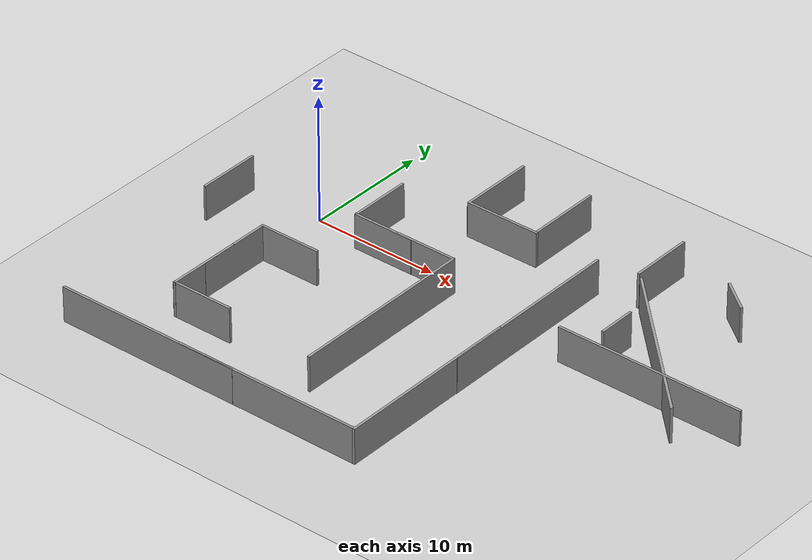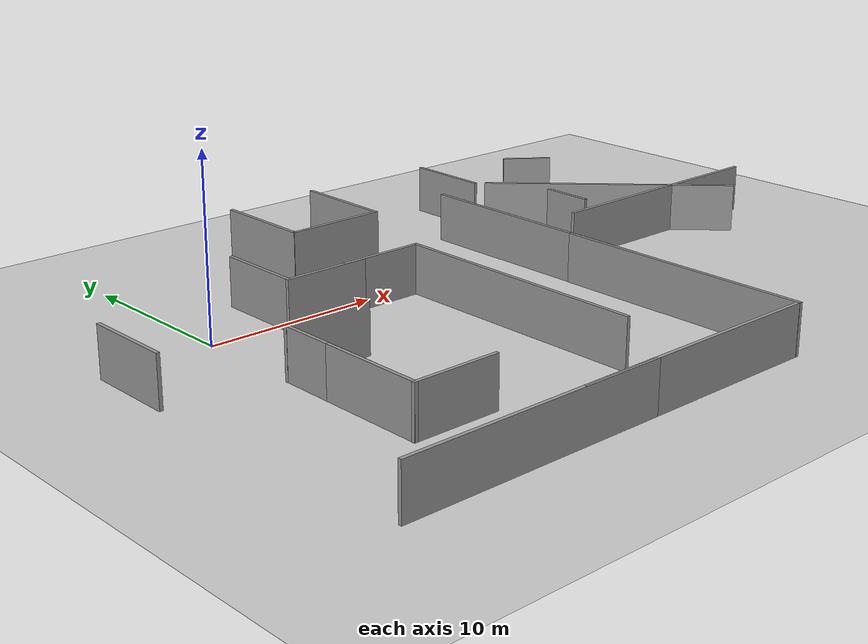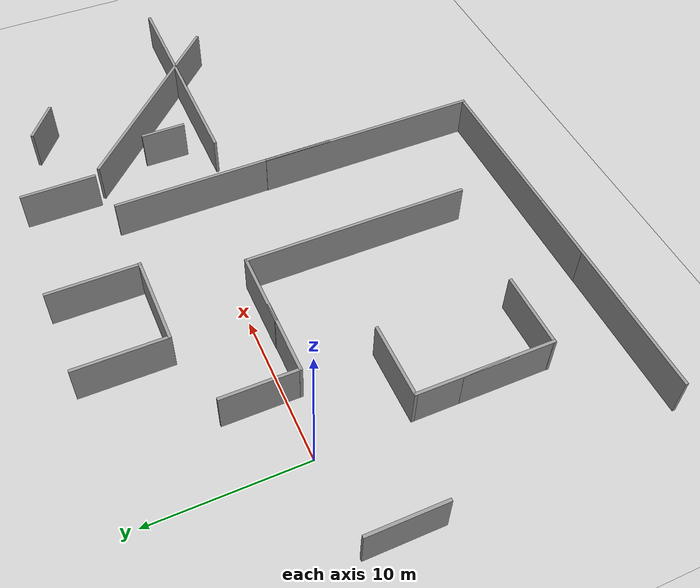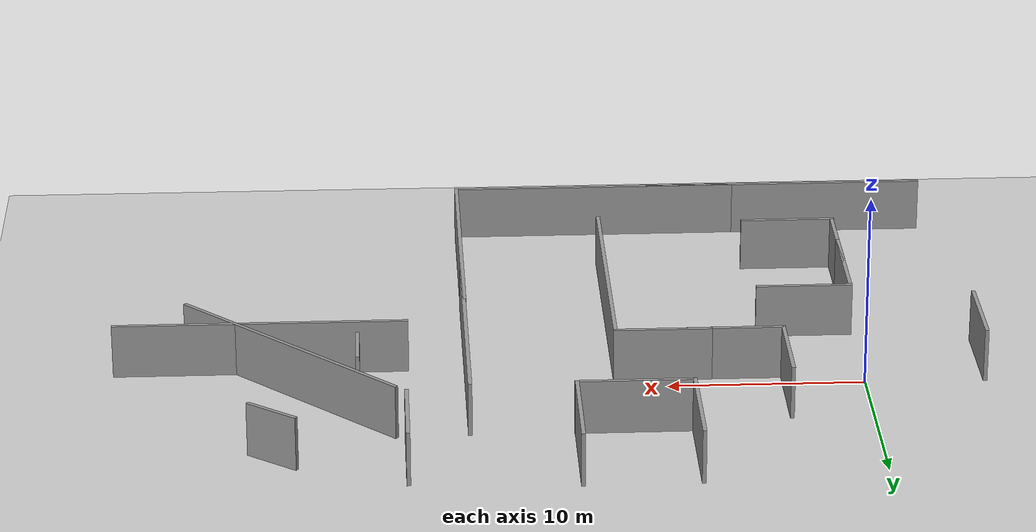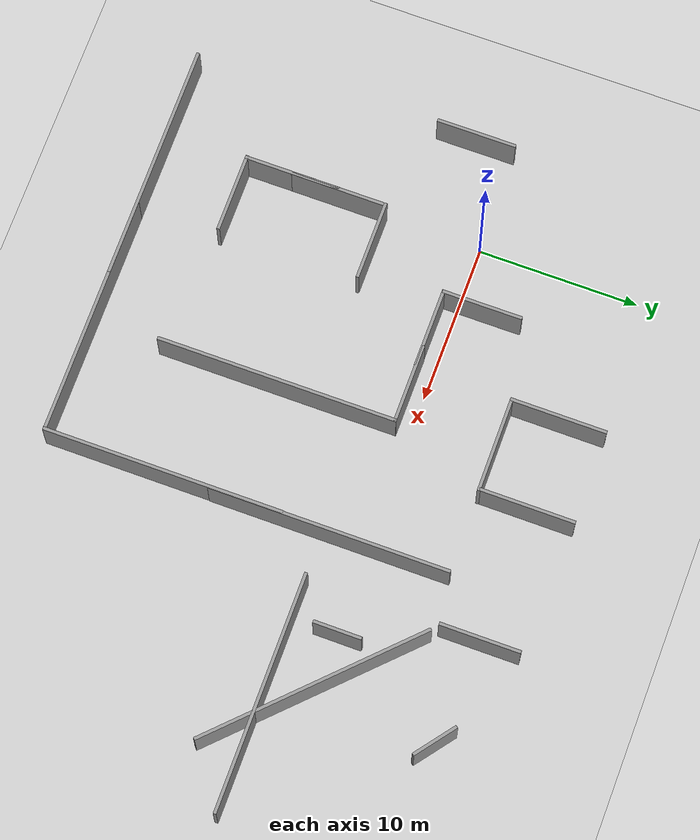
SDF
<sdf version="1.7">
 <world name="default">
  <model name="ground_plane">
   <static>1</static>
   <link name="link">
    <collision name="collision">
     <geometry><plane><normal>0 0 1</normal><size>100 100</size></plane></geometry>
     <surface>
      <contact><collide_bitmask>65535</collide_bitmask></contact>
      <friction><ode><mu>100</mu><mu2>50</mu2></ode></friction>
     </surface>
    </collision>
    <visual name="visual">
     <cast_shadows>0</cast_shadows>
     <geometry><plane><normal>0 0 1</normal><size>100 100</size></plane></geometry>
     <material>
      <script><uri>file://media/materials/scripts/gazebo.material</uri><name>Gazebo/Grey</name></script>
     </material>
    </visual>
   </link>
  </model>
  <model name="grey_wall_3">
   <link name="link">
    <pose>0 0 1.4 0 -0 0</pose>
    <inertial>
     <mass>1</mass>
     <inertia><ixx>1</ixx><ixy>0</ixy><ixz>0</ixz><iyy>1</iyy><iyz>0</iyz><izz>1</izz></inertia>
    </inertial>
    <visual name="visual">
     <cast_shadows>0</cast_shadows>
     <geometry><box><size>3 0.2 2.8</size></box></geometry>
     <material>
      <script>
       <uri>model://grey_wall/materials/scripts</uri>
       <uri>model://grey_wall/materials/textures</uri>
       <name>vrc/grey_wall</name>
      </script>
      <shader type="pixel"><normal_map>__default__</normal_map></shader>
      <ambient>1 1 1 1</ambient>
      <diffuse>1 1 1 1</diffuse>
      <specular>0 0 0 1</specular>
      <emissive>0 0 0 1</emissive>
     </material>
    </visual>
    <collision name="collision">
     <geometry><box><size>2.96 0.2 2.8</size></box></geometry>
     <surface>
      <friction>
       <ode><mu>1</mu><mu2>1</mu2><fdir1>0 0 0</fdir1><slip1>0</slip1><slip2>0</slip2></ode>
       <torsional>
        <coefficient>1</coefficient>
        <patch_radius>0</patch_radius>
        <surface_radius>0</surface_radius>
        <use_patch_radius>1</use_patch_radius>
        <ode><slip>0</slip></ode>
       </torsional>
      </friction>
      <bounce><restitution_coefficient>0</restitution_coefficient><threshold>1e+06</threshold></bounce>
      <contact>
       <collide_without_contact>0</collide_without_contact>
       <collide_without_contact_bitmask>1</collide_without_contact_bitmask>
       <collide_bitmask>1</collide_bitmask>
       <ode>
        <soft_cfm>0</soft_cfm>
        <soft_erp>0.2</soft_erp>
        <kp>1e+13</kp>
        <kd>1</kd>
        <max_vel>0.01</max_vel>
        <min_depth>0</min_depth>
       </ode>
       <bullet>
        <split_impulse>1</split_impulse>
        <split_impulse_penetration_threshold>-0.01</split_impulse_penetration_threshold>
        <soft_cfm>0</soft_cfm>
        <soft_erp>0.2</soft_erp>
        <kp>1e+13</kp>
        <kd>1</kd>
       </bullet>
      </contact>
     </surface>
    </collision>
   </link>
   <static>1</static>
   <pose>25.6212 0.257411 0 0 0 -1.57333</pose>
  </model>
  <model name="grey_wall_5_clone_clone_0_clone_1_clone_0_clone_0">
   <link name="link">
    <pose>0 0 1.4 0 -0 0</pose>
    <inertial>
     <mass>1</mass>
     <inertia><ixx>1</ixx><ixy>0</ixy><ixz>0</ixz><iyy>1</iyy><iyz>0</iyz><izz>1</izz></inertia>
    </inertial>
    <visual name="visual">
     <cast_shadows>0</cast_shadows>
     <geometry><box><size>5 0.2 2.8</size></box></geometry>
     <material>
      <script>
       <uri>model://grey_wall/materials/scripts</uri>
       <uri>model://grey_wall/materials/textures</uri>
       <name>vrc/grey_wall</name>
      </script>
      <shader type="pixel"><normal_map>__default__</normal_map></shader>
      <ambient>1 1 1 1</ambient>
      <diffuse>1 1 1 1</diffuse>
      <specular>0 0 0 1</specular>
      <emissive>0 0 0 1</emissive>
     </material>
    </visual>
    <collision name="collision">
     <geometry><box><size>5 0.2 2.8</size></box></geometry>
     <surface>
      <friction>
       <ode><mu>1</mu><mu2>1</mu2><fdir1>0 0 0</fdir1><slip1>0</slip1><slip2>0</slip2></ode>
       <torsional>
        <coefficient>1</coefficient>
        <patch_radius>0</patch_radius>
        <surface_radius>0</surface_radius>
        <use_patch_radius>1</use_patch_radius>
        <ode><slip>0</slip></ode>
       </torsional>
      </friction>
      <bounce><restitution_coefficient>0</restitution_coefficient><threshold>1e+06</threshold></bounce>
      <contact>
       <collide_without_contact>0</collide_without_contact>
       <collide_without_contact_bitmask>1</collide_without_contact_bitmask>
       <collide_bitmask>1</collide_bitmask>
       <ode>
        <soft_cfm>0</soft_cfm>
        <soft_erp>0.2</soft_erp>
        <kp>1e+13</kp>
        <kd>1</kd>
        <max_vel>0.01</max_vel>
        <min_depth>0</min_depth>
       </ode>
       <bullet>
        <split_impulse>1</split_impulse>
        <split_impulse_penetration_threshold>-0.01</split_impulse_penetration_threshold>
        <soft_cfm>0</soft_cfm>
        <soft_erp>0.2</soft_erp>
        <kp>1e+13</kp>
        <kd>1</kd>
       </bullet>
      </contact>
     </surface>
    </collision>
   </link>
   <static>1</static>
   <pose>4.10333 1.50808 0 0 -0 1.57141</pose>
  </model>
  <model name="grey_wall_15_clone_0_clone_clone">
   <link name="link">
    <pose>0 0 1.4 0 -0 0</pose>
    <inertial>
     <mass>1</mass>
     <inertia><ixx>1</ixx><ixy>0</ixy><ixz>0</ixz><iyy>1</iyy><iyz>0</iyz><izz>1</izz></inertia>
    </inertial>
    <visual name="visual">
     <cast_shadows>0</cast_shadows>
     <geometry><box><size>15 0.2 2.8</size></box></geometry>
     <material>
      <script>
       <uri>model://grey_wall/materials/scripts</uri>
       <uri>model://grey_wall/materials/textures</uri>
       <name>vrc/grey_wall</name>
      </script>
      <shader type="pixel"><normal_map>__default__</normal_map></shader>
      <ambient>1 1 1 1</ambient>
      <diffuse>1 1 1 1</diffuse>
      <specular>0 0 0 1</specular>
      <emissive>0 0 0 1</emissive>
     </material>
    </visual>
    <collision name="collision">
     <geometry><box><size>15 0.2 2.8</size></box></geometry>
     <surface>
      <friction>
       <ode><mu>1</mu><mu2>1</mu2><fdir1>0 0 0</fdir1><slip1>0</slip1><slip2>0</slip2></ode>
       <torsional>
        <coefficient>1</coefficient>
        <patch_radius>0</patch_radius>
        <surface_radius>0</surface_radius>
        <use_patch_radius>1</use_patch_radius>
        <ode><slip>0</slip></ode>
       </torsional>
      </friction>
      <bounce><restitution_coefficient>0</restitution_coefficient><threshold>1e+06</threshold></bounce>
      <contact>
       <collide_without_contact>0</collide_without_contact>
       <collide_without_contact_bitmask>1</collide_without_contact_bitmask>
       <collide_bitmask>1</collide_bitmask>
       <ode>
        <soft_cfm>0</soft_cfm>
        <soft_erp>0.2</soft_erp>
        <kp>1e+13</kp>
        <kd>1</kd>
        <max_vel>0.01</max_vel>
        <min_depth>0</min_depth>
       </ode>
       <bullet>
        <split_impulse>1</split_impulse>
        <split_impulse_penetration_threshold>-0.01</split_impulse_penetration_threshold>
        <soft_cfm>0</soft_cfm>
        <soft_erp>0.2</soft_erp>
        <kp>1e+13</kp>
        <kd>1</kd>
       </bullet>
      </contact>
     </surface>
    </collision>
   </link>
   <static>1</static>
   <pose>30.5412 -2.59463 0 0 -0 0.001488</pose>
  </model>
  <model name="grey_wall_15_clone_0_clone_clone_clone_0">
   <link name="link">
    <pose>0 0 1.4 0 -0 0</pose>
    <inertial>
     <mass>1</mass>
     <inertia><ixx>1</ixx><ixy>0</ixy><ixz>0</ixz><iyy>1</iyy><iyz>0</iyz><izz>1</izz></inertia>
    </inertial>
    <visual name="visual">
     <cast_shadows>0</cast_shadows>
     <geometry><box><size>15 0.2 2.8</size></box></geometry>
     <material>
      <script>
       <uri>model://grey_wall/materials/scripts</uri>
       <uri>model://grey_wall/materials/textures</uri>
       <name>vrc/grey_wall</name>
      </script>
      <shader type="pixel"><normal_map>__default__</normal_map></shader>
      <ambient>1 1 1 1</ambient>
      <diffuse>1 1 1 1</diffuse>
      <specular>0 0 0 1</specular>
      <emissive>0 0 0 1</emissive>
     </material>
    </visual>
    <collision name="collision">
     <geometry><box><size>15 0.2 2.8</size></box></geometry>
     <surface>
      <friction>
       <ode><mu>1</mu><mu2>1</mu2><fdir1>0 0 0</fdir1><slip1>0</slip1><slip2>0</slip2></ode>
       <torsional>
        <coefficient>1</coefficient>
        <patch_radius>0</patch_radius>
        <surface_radius>0</surface_radius>
        <use_patch_radius>1</use_patch_radius>
        <ode><slip>0</slip></ode>
       </torsional>
      </friction>
      <bounce><restitution_coefficient>0</restitution_coefficient><threshold>1e+06</threshold></bounce>
      <contact>
       <collide_without_contact>0</collide_without_contact>
       <collide_without_contact_bitmask>1</collide_without_contact_bitmask>
       <collide_bitmask>1</collide_bitmask>
       <ode>
        <soft_cfm>0</soft_cfm>
        <soft_erp>0.2</soft_erp>
        <kp>1e+13</kp>
        <kd>1</kd>
        <max_vel>0.01</max_vel>
        <min_depth>0</min_depth>
       </ode>
       <bullet>
        <split_impulse>1</split_impulse>
        <split_impulse_penetration_threshold>-0.01</split_impulse_penetration_threshold>
        <soft_cfm>0</soft_cfm>
        <soft_erp>0.2</soft_erp>
        <kp>1e+13</kp>
        <kd>1</kd>
       </bullet>
      </contact>
     </surface>
    </collision>
   </link>
   <static>1</static>
   <pose>29.0765 0.048129 -0 0 0 -0.778214</pose>
  </model>
  <model name="grey_wall_5_clone_clone_0_clone_1_clone_clone">
   <link name="link">
    <pose>0 0 1.4 0 -0 0</pose>
    <inertial>
     <mass>1</mass>
     <inertia><ixx>1</ixx><ixy>0</ixy><ixz>0</ixz><iyy>1</iyy><iyz>0</iyz><izz>1</izz></inertia>
    </inertial>
    <visual name="visual">
     <cast_shadows>0</cast_shadows>
     <geometry><box><size>3 0.2 2.8</size></box></geometry>
     <material>
      <script>
       <uri>model://grey_wall/materials/scripts</uri>
       <uri>model://grey_wall/materials/textures</uri>
       <name>vrc/grey_wall</name>
      </script>
      <shader type="pixel"><normal_map>__default__</normal_map></shader>
      <ambient>1 1 1 1</ambient>
      <diffuse>1 1 1 1</diffuse>
      <specular>0 0 0 1</specular>
      <emissive>0 0 0 1</emissive>
     </material>
    </visual>
    <collision name="collision">
     <geometry><box><size>3 0.2 2.8</size></box></geometry>
     <surface>
      <friction>
       <ode><mu>1</mu><mu2>1</mu2><fdir1>0 0 0</fdir1><slip1>0</slip1><slip2>0</slip2></ode>
       <torsional>
        <coefficient>1</coefficient>
        <patch_radius>0</patch_radius>
        <surface_radius>0</surface_radius>
        <use_patch_radius>1</use_patch_radius>
        <ode><slip>0</slip></ode>
       </torsional>
      </friction>
      <bounce><restitution_coefficient>0</restitution_coefficient><threshold>1e+06</threshold></bounce>
      <contact>
       <collide_without_contact>0</collide_without_contact>
       <collide_without_contact_bitmask>1</collide_without_contact_bitmask>
       <collide_bitmask>1</collide_bitmask>
       <ode>
        <soft_cfm>0</soft_cfm>
        <soft_erp>0.2</soft_erp>
        <kp>1e+13</kp>
        <kd>1</kd>
        <max_vel>0.01</max_vel>
        <min_depth>0</min_depth>
       </ode>
       <bullet>
        <split_impulse>1</split_impulse>
        <split_impulse_penetration_threshold>-0.01</split_impulse_penetration_threshold>
        <soft_cfm>0</soft_cfm>
        <soft_erp>0.2</soft_erp>
        <kp>1e+13</kp>
        <kd>1</kd>
       </bullet>
      </contact>
     </surface>
    </collision>
   </link>
   <static>1</static>
   <pose>29.8 7.70392 0 0 0 -0.648953</pose>
  </model>
  <model name="grey_wall_5_clone_clone_0">
   <link name="link">
    <pose>0 0 1.4 0 -0 0</pose>
    <inertial>
     <mass>1</mass>
     <inertia><ixx>1</ixx><ixy>0</ixy><ixz>0</ixz><iyy>1</iyy><iyz>0</iyz><izz>1</izz></inertia>
    </inertial>
    <visual name="visual">
     <cast_shadows>0</cast_shadows>
     <geometry><box><size>5 0.2 2.8</size></box></geometry>
     <material>
      <script>
       <uri>model://grey_wall/materials/scripts</uri>
       <uri>model://grey_wall/materials/textures</uri>
       <name>vrc/grey_wall</name>
      </script>
      <shader type="pixel"><normal_map>__default__</normal_map></shader>
      <ambient>1 1 1 1</ambient>
      <diffuse>1 1 1 1</diffuse>
      <specular>0 0 0 1</specular>
      <emissive>0 0 0 1</emissive>
     </material>
    </visual>
    <collision name="collision">
     <geometry><box><size>5 0.2 2.8</size></box></geometry>
     <surface>
      <friction>
       <ode><mu>1</mu><mu2>1</mu2><fdir1>0 0 0</fdir1><slip1>0</slip1><slip2>0</slip2></ode>
       <torsional>
        <coefficient>1</coefficient>
        <patch_radius>0</patch_radius>
        <surface_radius>0</surface_radius>
        <use_patch_radius>1</use_patch_radius>
        <ode><slip>0</slip></ode>
       </torsional>
      </friction>
      <bounce><restitution_coefficient>0</restitution_coefficient><threshold>1e+06</threshold></bounce>
      <contact>
       <collide_without_contact>0</collide_without_contact>
       <collide_without_contact_bitmask>1</collide_without_contact_bitmask>
       <collide_bitmask>1</collide_bitmask>
       <ode>
        <soft_cfm>0</soft_cfm>
        <soft_erp>0.2</soft_erp>
        <kp>1e+13</kp>
        <kd>1</kd>
        <max_vel>0.01</max_vel>
        <min_depth>0</min_depth>
       </ode>
       <bullet>
        <split_impulse>1</split_impulse>
        <split_impulse_penetration_threshold>-0.01</split_impulse_penetration_threshold>
        <soft_cfm>0</soft_cfm>
        <soft_erp>0.2</soft_erp>
        <kp>1e+13</kp>
        <kd>1</kd>
       </bullet>
      </contact>
     </surface>
    </collision>
   </link>
   <static>1</static>
   <pose>23.2528 8.11819 0 0 -0 1.57141</pose>
  </model>
  <model name="grey_wall_15_clone_0_clone_clone_0_clone_0_clone_1">
   <link name="link">
    <pose>0 0 1.4 0 -0 0</pose>
    <inertial>
     <mass>1</mass>
     <inertia><ixx>1</ixx><ixy>0</ixy><ixz>0</ixz><iyy>1</iyy><iyz>0</iyz><izz>1</izz></inertia>
    </inertial>
    <visual name="visual">
     <cast_shadows>0</cast_shadows>
     <geometry><box><size>15 0.2 2.8</size></box></geometry>
     <material>
      <script>
       <uri>model://grey_wall/materials/scripts</uri>
       <uri>model://grey_wall/materials/textures</uri>
       <name>vrc/grey_wall</name>
      </script>
      <shader type="pixel"><normal_map>__default__</normal_map></shader>
      <ambient>1 1 1 1</ambient>
      <diffuse>1 1 1 1</diffuse>
      <specular>0 0 0 1</specular>
      <emissive>0 0 0 1</emissive>
     </material>
    </visual>
    <collision name="collision">
     <geometry><box><size>15 0.2 2.8</size></box></geometry>
     <surface>
      <friction>
       <ode><mu>1</mu><mu2>1</mu2><fdir1>0 0 0</fdir1><slip1>0</slip1><slip2>0</slip2></ode>
       <torsional>
        <coefficient>1</coefficient>
        <patch_radius>0</patch_radius>
        <surface_radius>0</surface_radius>
        <use_patch_radius>1</use_patch_radius>
        <ode><slip>0</slip></ode>
       </torsional>
      </friction>
      <bounce><restitution_coefficient>0</restitution_coefficient><threshold>1e+06</threshold></bounce>
      <contact>
       <collide_without_contact>0</collide_without_contact>
       <collide_without_contact_bitmask>1</collide_without_contact_bitmask>
       <collide_bitmask>1</collide_bitmask>
       <ode>
        <soft_cfm>0</soft_cfm>
        <soft_erp>0.2</soft_erp>
        <kp>1e+13</kp>
        <kd>1</kd>
        <max_vel>0.01</max_vel>
        <min_depth>0</min_depth>
       </ode>
       <bullet>
        <split_impulse>1</split_impulse>
        <split_impulse_penetration_threshold>-0.01</split_impulse_penetration_threshold>
        <soft_cfm>0</soft_cfm>
        <soft_erp>0.2</soft_erp>
        <kp>1e+13</kp>
        <kd>1</kd>
       </bullet>
      </contact>
     </surface>
    </collision>
   </link>
   <static>1</static>
   <pose>20.1404 -2.28698 0 0 -0 1.57141</pose>
  </model>
  <model name="grey_wall_15_clone_0_clone_clone_clone_1_clone_clone">
   <link name="link">
    <pose>0 0 1.4 0 -0 0</pose>
    <inertial>
     <mass>1</mass>
     <inertia><ixx>1</ixx><ixy>0</ixy><ixz>0</ixz><iyy>1</iyy><iyz>0</iyz><izz>1</izz></inertia>
    </inertial>
    <visual name="visual">
     <cast_shadows>0</cast_shadows>
     <geometry><box><size>15 0.2 2.8</size></box></geometry>
     <material>
      <script>
       <uri>model://grey_wall/materials/scripts</uri>
       <uri>model://grey_wall/materials/textures</uri>
       <name>vrc/grey_wall</name>
      </script>
      <shader type="pixel"><normal_map>__default__</normal_map></shader>
      <ambient>1 1 1 1</ambient>
      <diffuse>1 1 1 1</diffuse>
      <specular>0 0 0 1</specular>
      <emissive>0 0 0 1</emissive>
     </material>
    </visual>
    <collision name="collision">
     <geometry><box><size>15 0.2 2.8</size></box></geometry>
     <surface>
      <friction>
       <ode><mu>1</mu><mu2>1</mu2><fdir1>0 0 0</fdir1><slip1>0</slip1><slip2>0</slip2></ode>
       <torsional>
        <coefficient>1</coefficient>
        <patch_radius>0</patch_radius>
        <surface_radius>0</surface_radius>
        <use_patch_radius>1</use_patch_radius>
        <ode><slip>0</slip></ode>
       </torsional>
      </friction>
      <bounce><restitution_coefficient>0</restitution_coefficient><threshold>1e+06</threshold></bounce>
      <contact>
       <collide_without_contact>0</collide_without_contact>
       <collide_without_contact_bitmask>1</collide_without_contact_bitmask>
       <collide_bitmask>1</collide_bitmask>
       <ode>
        <soft_cfm>0</soft_cfm>
        <soft_erp>0.2</soft_erp>
        <kp>1e+13</kp>
        <kd>1</kd>
        <max_vel>0.01</max_vel>
        <min_depth>0</min_depth>
       </ode>
       <bullet>
        <split_impulse>1</split_impulse>
        <split_impulse_penetration_threshold>-0.01</split_impulse_penetration_threshold>
        <soft_cfm>0</soft_cfm>
        <soft_erp>0.2</soft_erp>
        <kp>1e+13</kp>
        <kd>1</kd>
       </bullet>
      </contact>
     </surface>
    </collision>
   </link>
   <static>1</static>
   <pose>2.24759 -20.0533 0 0 -0 0.001488</pose>
  </model>
  <model name="grey_wall_15_clone_0_clone_clone_clone_1_clone_clone_0">
   <link name="link">
    <pose>0 0 1.4 0 -0 0</pose>
    <inertial>
     <mass>1</mass>
     <inertia><ixx>1</ixx><ixy>0</ixy><ixz>0</ixz><iyy>1</iyy><iyz>0</iyz><izz>1</izz></inertia>
    </inertial>
    <visual name="visual">
     <cast_shadows>0</cast_shadows>
     <geometry><box><size>15 0.2 2.8</size></box></geometry>
     <material>
      <script>
       <uri>model://grey_wall/materials/scripts</uri>
       <uri>model://grey_wall/materials/textures</uri>
       <name>vrc/grey_wall</name>
      </script>
      <shader type="pixel"><normal_map>__default__</normal_map></shader>
      <ambient>1 1 1 1</ambient>
      <diffuse>1 1 1 1</diffuse>
      <specular>0 0 0 1</specular>
      <emissive>0 0 0 1</emissive>
     </material>
    </visual>
    <collision name="collision">
     <geometry><box><size>15 0.2 2.8</size></box></geometry>
     <surface>
      <friction>
       <ode><mu>1</mu><mu2>1</mu2><fdir1>0 0 0</fdir1><slip1>0</slip1><slip2>0</slip2></ode>
       <torsional>
        <coefficient>1</coefficient>
        <patch_radius>0</patch_radius>
        <surface_radius>0</surface_radius>
        <use_patch_radius>1</use_patch_radius>
        <ode><slip>0</slip></ode>
       </torsional>
      </friction>
      <bounce><restitution_coefficient>0</restitution_coefficient><threshold>1e+06</threshold></bounce>
      <contact>
       <collide_without_contact>0</collide_without_contact>
       <collide_without_contact_bitmask>1</collide_without_contact_bitmask>
       <collide_bitmask>1</collide_bitmask>
       <ode>
        <soft_cfm>0</soft_cfm>
        <soft_erp>0.2</soft_erp>
        <kp>1e+13</kp>
        <kd>1</kd>
        <max_vel>0.01</max_vel>
        <min_depth>0</min_depth>
       </ode>
       <bullet>
        <split_impulse>1</split_impulse>
        <split_impulse_penetration_threshold>-0.01</split_impulse_penetration_threshold>
        <soft_cfm>0</soft_cfm>
        <soft_erp>0.2</soft_erp>
        <kp>1e+13</kp>
        <kd>1</kd>
       </bullet>
      </contact>
     </surface>
    </collision>
   </link>
   <static>1</static>
   <pose>12.5214 -20.0335 0 0 -0 0.001488</pose>
  </model>
  <model name="grey_wall_15_clone_0_clone_clone_0_clone_0_clone_1_clone">
   <link name="link">
    <pose>0 0 1.4 0 -0 0</pose>
    <inertial>
     <mass>1</mass>
     <inertia><ixx>1</ixx><ixy>0</ixy><ixz>0</ixz><iyy>1</iyy><iyz>0</iyz><izz>1</izz></inertia>
    </inertial>
    <visual name="visual">
     <cast_shadows>0</cast_shadows>
     <geometry><box><size>15 0.2 2.8</size></box></geometry>
     <material>
      <script>
       <uri>model://grey_wall/materials/scripts</uri>
       <uri>model://grey_wall/materials/textures</uri>
       <name>vrc/grey_wall</name>
      </script>
      <shader type="pixel"><normal_map>__default__</normal_map></shader>
      <ambient>1 1 1 1</ambient>
      <diffuse>1 1 1 1</diffuse>
      <specular>0 0 0 1</specular>
      <emissive>0 0 0 1</emissive>
     </material>
    </visual>
    <collision name="collision">
     <geometry><box><size>15 0.2 2.8</size></box></geometry>
     <surface>
      <friction>
       <ode><mu>1</mu><mu2>1</mu2><fdir1>0 0 0</fdir1><slip1>0</slip1><slip2>0</slip2></ode>
       <torsional>
        <coefficient>1</coefficient>
        <patch_radius>0</patch_radius>
        <surface_radius>0</surface_radius>
        <use_patch_radius>1</use_patch_radius>
        <ode><slip>0</slip></ode>
       </torsional>
      </friction>
      <bounce><restitution_coefficient>0</restitution_coefficient><threshold>1e+06</threshold></bounce>
      <contact>
       <collide_without_contact>0</collide_without_contact>
       <collide_without_contact_bitmask>1</collide_without_contact_bitmask>
       <collide_bitmask>1</collide_bitmask>
       <ode>
        <soft_cfm>0</soft_cfm>
        <soft_erp>0.2</soft_erp>
        <kp>1e+13</kp>
        <kd>1</kd>
        <max_vel>0.01</max_vel>
        <min_depth>0</min_depth>
       </ode>
       <bullet>
        <split_impulse>1</split_impulse>
        <split_impulse_penetration_threshold>-0.01</split_impulse_penetration_threshold>
        <soft_cfm>0</soft_cfm>
        <soft_erp>0.2</soft_erp>
        <kp>1e+13</kp>
        <kd>1</kd>
       </bullet>
      </contact>
     </surface>
    </collision>
   </link>
   <static>1</static>
   <pose>20.1207 -12.6344 0 0 -0 1.57141</pose>
  </model>
  <model name="grey_wall_5_clone_clone_0_clone_1_clone_0_clone_0_clone_0">
   <link name="link">
    <pose>0 0 1.4 0 -0 0</pose>
    <inertial>
     <mass>1</mass>
     <inertia><ixx>1</ixx><ixy>0</ixy><ixz>0</ixz><iyy>1</iyy><iyz>0</iyz><izz>1</izz></inertia>
    </inertial>
    <visual name="visual">
     <cast_shadows>0</cast_shadows>
     <geometry><box><size>5 0.2 2.8</size></box></geometry>
     <material>
      <script>
       <uri>model://grey_wall/materials/scripts</uri>
       <uri>model://grey_wall/materials/textures</uri>
       <name>vrc/grey_wall</name>
      </script>
      <shader type="pixel"><normal_map>__default__</normal_map></shader>
      <ambient>1 1 1 1</ambient>
      <diffuse>1 1 1 1</diffuse>
      <specular>0 0 0 1</specular>
      <emissive>0 0 0 1</emissive>
     </material>
    </visual>
    <collision name="collision">
     <geometry><box><size>5 0.2 2.8</size></box></geometry>
     <surface>
      <friction>
       <ode><mu>1</mu><mu2>1</mu2><fdir1>0 0 0</fdir1><slip1>0</slip1><slip2>0</slip2></ode>
       <torsional>
        <coefficient>1</coefficient>
        <patch_radius>0</patch_radius>
        <surface_radius>0</surface_radius>
        <use_patch_radius>1</use_patch_radius>
        <ode><slip>0</slip></ode>
       </torsional>
      </friction>
      <bounce><restitution_coefficient>0</restitution_coefficient><threshold>1e+06</threshold></bounce>
      <contact>
       <collide_without_contact>0</collide_without_contact>
       <collide_without_contact_bitmask>1</collide_without_contact_bitmask>
       <collide_bitmask>1</collide_bitmask>
       <ode>
        <soft_cfm>0</soft_cfm>
        <soft_erp>0.2</soft_erp>
        <kp>1e+13</kp>
        <kd>1</kd>
        <max_vel>0.01</max_vel>
        <min_depth>0</min_depth>
       </ode>
       <bullet>
        <split_impulse>1</split_impulse>
        <split_impulse_penetration_threshold>-0.01</split_impulse_penetration_threshold>
        <soft_cfm>0</soft_cfm>
        <soft_erp>0.2</soft_erp>
        <kp>1e+13</kp>
        <kd>1</kd>
       </bullet>
      </contact>
     </surface>
    </collision>
   </link>
   <static>1</static>
   <pose>-6.11206 -2.45199 0 0 -0 1.57141</pose>
  </model>
  <model name="grey_wall_5_clone_clone_0_clone_1_clone_0_clone_0_clone_clone">
   <link name="link">
    <pose>0 0 1.4 0 -0 0</pose>
    <inertial>
     <mass>1</mass>
     <inertia><ixx>1</ixx><ixy>0</ixy><ixz>0</ixz><iyy>1</iyy><iyz>0</iyz><izz>1</izz></inertia>
    </inertial>
    <visual name="visual">
     <cast_shadows>0</cast_shadows>
     <geometry><box><size>5 0.2 2.8</size></box></geometry>
     <material>
      <script>
       <uri>model://grey_wall/materials/scripts</uri>
       <uri>model://grey_wall/materials/textures</uri>
       <name>vrc/grey_wall</name>
      </script>
      <shader type="pixel"><normal_map>__default__</normal_map></shader>
      <ambient>1 1 1 1</ambient>
      <diffuse>1 1 1 1</diffuse>
      <specular>0 0 0 1</specular>
      <emissive>0 0 0 1</emissive>
     </material>
    </visual>
    <collision name="collision">
     <geometry><box><size>5 0.2 2.8</size></box></geometry>
     <surface>
      <friction>
       <ode><mu>1</mu><mu2>1</mu2><fdir1>0 0 0</fdir1><slip1>0</slip1><slip2>0</slip2></ode>
       <torsional>
        <coefficient>1</coefficient>
        <patch_radius>0</patch_radius>
        <surface_radius>0</surface_radius>
        <use_patch_radius>1</use_patch_radius>
        <ode><slip>0</slip></ode>
       </torsional>
      </friction>
      <bounce><restitution_coefficient>0</restitution_coefficient><threshold>1e+06</threshold></bounce>
      <contact>
       <collide_without_contact>0</collide_without_contact>
       <collide_without_contact_bitmask>1</collide_without_contact_bitmask>
       <collide_bitmask>1</collide_bitmask>
       <ode>
        <soft_cfm>0</soft_cfm>
        <soft_erp>0.2</soft_erp>
        <kp>1e+13</kp>
        <kd>1</kd>
        <max_vel>0.01</max_vel>
        <min_depth>0</min_depth>
       </ode>
       <bullet>
        <split_impulse>1</split_impulse>
        <split_impulse_penetration_threshold>-0.01</split_impulse_penetration_threshold>
        <soft_cfm>0</soft_cfm>
        <soft_erp>0.2</soft_erp>
        <kp>1e+13</kp>
        <kd>1</kd>
       </bullet>
      </contact>
     </surface>
    </collision>
   </link>
   <static>1</static>
   <pose>2.51002 -6.0487 0 0 -0 0.001302</pose>
  </model>
  <model name="grey_wall_6_clone_0_clone_clone_clone_clone_0">
   <link name="link">
    <pose>0 0 1.4 0 -0 0</pose>
    <inertial>
     <mass>1</mass>
     <inertia><ixx>1</ixx><ixy>0</ixy><ixz>0</ixz><iyy>1</iyy><iyz>0</iyz><izz>1</izz></inertia>
    </inertial>
    <visual name="visual">
     <cast_shadows>0</cast_shadows>
     <geometry><box><size>6 0.2 2.8</size></box></geometry>
     <material>
      <script>
       <uri>model://grey_wall/materials/scripts</uri>
       <uri>model://grey_wall/materials/textures</uri>
       <name>vrc/grey_wall</name>
      </script>
      <shader type="pixel"><normal_map>__default__</normal_map></shader>
      <ambient>1 1 1 1</ambient>
      <diffuse>1 1 1 1</diffuse>
      <specular>0 0 0 1</specular>
      <emissive>0 0 0 1</emissive>
     </material>
    </visual>
    <collision name="collision">
     <geometry><box><size>6 0.2 2.8</size></box></geometry>
     <surface>
      <friction>
       <ode><mu>1</mu><mu2>1</mu2><fdir1>0 0 0</fdir1><slip1>0</slip1><slip2>0</slip2></ode>
       <torsional>
        <coefficient>1</coefficient>
        <patch_radius>0</patch_radius>
        <surface_radius>0</surface_radius>
        <use_patch_radius>1</use_patch_radius>
        <ode><slip>0</slip></ode>
       </torsional>
      </friction>
      <bounce><restitution_coefficient>0</restitution_coefficient><threshold>1e+06</threshold></bounce>
      <contact>
       <collide_without_contact>0</collide_without_contact>
       <collide_without_contact_bitmask>1</collide_without_contact_bitmask>
       <collide_bitmask>1</collide_bitmask>
       <ode>
        <soft_cfm>0</soft_cfm>
        <soft_erp>0.2</soft_erp>
        <kp>1e+13</kp>
        <kd>1</kd>
        <max_vel>0.01</max_vel>
        <min_depth>0</min_depth>
       </ode>
       <bullet>
        <split_impulse>1</split_impulse>
        <split_impulse_penetration_threshold>-0.01</split_impulse_penetration_threshold>
        <soft_cfm>0</soft_cfm>
        <soft_erp>0.2</soft_erp>
        <kp>1e+13</kp>
        <kd>1</kd>
       </bullet>
      </contact>
     </surface>
    </collision>
   </link>
   <static>1</static>
   <pose>9.07315 7.99786 0 0 -0 1.56941</pose>
  </model>
  <model name="grey_wall_6_clone_0_clone_clone_clone_clone_2">
   <link name="link">
    <pose>0 0 1.4 0 -0 0</pose>
    <inertial>
     <mass>1</mass>
     <inertia><ixx>1</ixx><ixy>0</ixy><ixz>0</ixz><iyy>1</iyy><iyz>0</iyz><izz>1</izz></inertia>
    </inertial>
    <visual name="visual">
     <cast_shadows>0</cast_shadows>
     <geometry><box><size>6 0.2 2.8</size></box></geometry>
     <material>
      <script>
       <uri>model://grey_wall/materials/scripts</uri>
       <uri>model://grey_wall/materials/textures</uri>
       <name>vrc/grey_wall</name>
      </script>
      <shader type="pixel"><normal_map>__default__</normal_map></shader>
      <ambient>1 1 1 1</ambient>
      <diffuse>1 1 1 1</diffuse>
      <specular>0 0 0 1</specular>
      <emissive>0 0 0 1</emissive>
     </material>
    </visual>
    <collision name="collision">
     <geometry><box><size>6 0.2 2.8</size></box></geometry>
     <surface>
      <friction>
       <ode><mu>1</mu><mu2>1</mu2><fdir1>0 0 0</fdir1><slip1>0</slip1><slip2>0</slip2></ode>
       <torsional>
        <coefficient>1</coefficient>
        <patch_radius>0</patch_radius>
        <surface_radius>0</surface_radius>
        <use_patch_radius>1</use_patch_radius>
        <ode><slip>0</slip></ode>
       </torsional>
      </friction>
      <bounce><restitution_coefficient>0</restitution_coefficient><threshold>1e+06</threshold></bounce>
      <contact>
       <collide_without_contact>0</collide_without_contact>
       <collide_without_contact_bitmask>1</collide_without_contact_bitmask>
       <collide_bitmask>1</collide_bitmask>
       <ode>
        <soft_cfm>0</soft_cfm>
        <soft_erp>0.2</soft_erp>
        <kp>1e+13</kp>
        <kd>1</kd>
        <max_vel>0.01</max_vel>
        <min_depth>0</min_depth>
       </ode>
       <bullet>
        <split_impulse>1</split_impulse>
        <split_impulse_penetration_threshold>-0.01</split_impulse_penetration_threshold>
        <soft_cfm>0</soft_cfm>
        <soft_erp>0.2</soft_erp>
        <kp>1e+13</kp>
        <kd>1</kd>
       </bullet>
      </contact>
     </surface>
    </collision>
   </link>
   <static>1</static>
   <pose>14.8819 8.04403 0 0 -0 1.56941</pose>
  </model>
  <model name="grey_wall_6_clone_0_clone_clone_1">
   <link name="link">
    <pose>0 0 1.4 0 -0 0</pose>
    <inertial>
     <mass>1</mass>
     <inertia><ixx>1</ixx><ixy>0</ixy><ixz>0</ixz><iyy>1</iyy><iyz>0</iyz><izz>1</izz></inertia>
    </inertial>
    <visual name="visual">
     <cast_shadows>0</cast_shadows>
     <geometry><box><size>6 0.2 2.8</size></box></geometry>
     <material>
      <script>
       <uri>model://grey_wall/materials/scripts</uri>
       <uri>model://grey_wall/materials/textures</uri>
       <name>vrc/grey_wall</name>
      </script>
      <shader type="pixel"><normal_map>__default__</normal_map></shader>
      <ambient>1 1 1 1</ambient>
      <diffuse>1 1 1 1</diffuse>
      <specular>0 0 0 1</specular>
      <emissive>0 0 0 1</emissive>
     </material>
    </visual>
    <collision name="collision">
     <geometry><box><size>6 0.2 2.8</size></box></geometry>
     <surface>
      <friction>
       <ode><mu>1</mu><mu2>1</mu2><fdir1>0 0 0</fdir1><slip1>0</slip1><slip2>0</slip2></ode>
       <torsional>
        <coefficient>1</coefficient>
        <patch_radius>0</patch_radius>
        <surface_radius>0</surface_radius>
        <use_patch_radius>1</use_patch_radius>
        <ode><slip>0</slip></ode>
       </torsional>
      </friction>
      <bounce><restitution_coefficient>0</restitution_coefficient><threshold>1e+06</threshold></bounce>
      <contact>
       <collide_without_contact>0</collide_without_contact>
       <collide_without_contact_bitmask>1</collide_without_contact_bitmask>
       <collide_bitmask>1</collide_bitmask>
       <ode>
        <soft_cfm>0</soft_cfm>
        <soft_erp>0.2</soft_erp>
        <kp>1e+13</kp>
        <kd>1</kd>
        <max_vel>0.01</max_vel>
        <min_depth>0</min_depth>
       </ode>
       <bullet>
        <split_impulse>1</split_impulse>
        <split_impulse_penetration_threshold>-0.01</split_impulse_penetration_threshold>
        <soft_cfm>0</soft_cfm>
        <soft_erp>0.2</soft_erp>
        <kp>1e+13</kp>
        <kd>1</kd>
       </bullet>
      </contact>
     </surface>
    </collision>
   </link>
   <static>1</static>
   <pose>11.9908 5.10049 0 0 0 -3.13795</pose>
  </model>
  <model name="grey_wall_6_clone_0_clone_clone_clone_clone_3">
   <link name="link">
    <pose>0 0 1.4 0 -0 0</pose>
    <inertial>
     <mass>1</mass>
     <inertia><ixx>1</ixx><ixy>0</ixy><ixz>0</ixz><iyy>1</iyy><iyz>0</iyz><izz>1</izz></inertia>
    </inertial>
    <visual name="visual">
     <cast_shadows>0</cast_shadows>
     <geometry><box><size>6 0.2 2.8</size></box></geometry>
     <material>
      <script>
       <uri>model://grey_wall/materials/scripts</uri>
       <uri>model://grey_wall/materials/textures</uri>
       <name>vrc/grey_wall</name>
      </script>
      <shader type="pixel"><normal_map>__default__</normal_map></shader>
      <ambient>1 1 1 1</ambient>
      <diffuse>1 1 1 1</diffuse>
      <specular>0 0 0 1</specular>
      <emissive>0 0 0 1</emissive>
     </material>
    </visual>
    <collision name="collision">
     <geometry><box><size>6 0.2 2.8</size></box></geometry>
     <surface>
      <friction>
       <ode><mu>1</mu><mu2>1</mu2><fdir1>0 0 0</fdir1><slip1>0</slip1><slip2>0</slip2></ode>
       <torsional>
        <coefficient>1</coefficient>
        <patch_radius>0</patch_radius>
        <surface_radius>0</surface_radius>
        <use_patch_radius>1</use_patch_radius>
        <ode><slip>0</slip></ode>
       </torsional>
      </friction>
      <bounce><restitution_coefficient>0</restitution_coefficient><threshold>1e+06</threshold></bounce>
      <contact>
       <collide_without_contact>0</collide_without_contact>
       <collide_without_contact_bitmask>1</collide_without_contact_bitmask>
       <collide_bitmask>1</collide_bitmask>
       <ode>
        <soft_cfm>0</soft_cfm>
        <soft_erp>0.2</soft_erp>
        <kp>1e+13</kp>
        <kd>1</kd>
        <max_vel>0.01</max_vel>
        <min_depth>0</min_depth>
       </ode>
       <bullet>
        <split_impulse>1</split_impulse>
        <split_impulse_penetration_threshold>-0.01</split_impulse_penetration_threshold>
        <soft_cfm>0</soft_cfm>
        <soft_erp>0.2</soft_erp>
        <kp>1e+13</kp>
        <kd>1</kd>
       </bullet>
      </contact>
     </surface>
    </collision>
   </link>
   <static>1</static>
   <pose>0.114154 -9.00894 0 0 -0 1.56941</pose>
  </model>
  <model name="grey_wall_6_clone_0_clone_clone_clone_clone_4">
   <link name="link">
    <pose>0 0 1.4 0 -0 0</pose>
    <inertial>
     <mass>1</mass>
     <inertia><ixx>1</ixx><ixy>0</ixy><ixz>0</ixz><iyy>1</iyy><iyz>0</iyz><izz>1</izz></inertia>
    </inertial>
    <visual name="visual">
     <cast_shadows>0</cast_shadows>
     <geometry><box><size>6 0.2 2.8</size></box></geometry>
     <material>
      <script>
       <uri>model://grey_wall/materials/scripts</uri>
       <uri>model://grey_wall/materials/textures</uri>
       <name>vrc/grey_wall</name>
      </script>
      <shader type="pixel"><normal_map>__default__</normal_map></shader>
      <ambient>1 1 1 1</ambient>
      <diffuse>1 1 1 1</diffuse>
      <specular>0 0 0 1</specular>
      <emissive>0 0 0 1</emissive>
     </material>
    </visual>
    <collision name="collision">
     <geometry><box><size>6 0.2 2.8</size></box></geometry>
     <surface>
      <friction>
       <ode><mu>1</mu><mu2>1</mu2><fdir1>0 0 0</fdir1><slip1>0</slip1><slip2>0</slip2></ode>
       <torsional>
        <coefficient>1</coefficient>
        <patch_radius>0</patch_radius>
        <surface_radius>0</surface_radius>
        <use_patch_radius>1</use_patch_radius>
        <ode><slip>0</slip></ode>
       </torsional>
      </friction>
      <bounce><restitution_coefficient>0</restitution_coefficient><threshold>1e+06</threshold></bounce>
      <contact>
       <collide_without_contact>0</collide_without_contact>
       <collide_without_contact_bitmask>1</collide_without_contact_bitmask>
       <collide_bitmask>1</collide_bitmask>
       <ode>
        <soft_cfm>0</soft_cfm>
        <soft_erp>0.2</soft_erp>
        <kp>1e+13</kp>
        <kd>1</kd>
        <max_vel>0.01</max_vel>
        <min_depth>0</min_depth>
       </ode>
       <bullet>
        <split_impulse>1</split_impulse>
        <split_impulse_penetration_threshold>-0.01</split_impulse_penetration_threshold>
        <soft_cfm>0</soft_cfm>
        <soft_erp>0.2</soft_erp>
        <kp>1e+13</kp>
        <kd>1</kd>
       </bullet>
      </contact>
     </surface>
    </collision>
   </link>
   <static>1</static>
   <pose>0.106758 -12.0136 0 0 -0 1.56941</pose>
  </model>
  <model name="grey_wall_5_clone_clone_0_clone_1_clone_0_clone_0_clone_clone_clone">
   <link name="link">
    <pose>0 0 1.4 0 -0 0</pose>
    <inertial>
     <mass>1</mass>
     <inertia><ixx>1</ixx><ixy>0</ixy><ixz>0</ixz><iyy>1</iyy><iyz>0</iyz><izz>1</izz></inertia>
    </inertial>
    <visual name="visual">
     <cast_shadows>0</cast_shadows>
     <geometry><box><size>5 0.2 2.8</size></box></geometry>
     <material>
      <script>
       <uri>model://grey_wall/materials/scripts</uri>
       <uri>model://grey_wall/materials/textures</uri>
       <name>vrc/grey_wall</name>
      </script>
      <shader type="pixel"><normal_map>__default__</normal_map></shader>
      <ambient>1 1 1 1</ambient>
      <diffuse>1 1 1 1</diffuse>
      <specular>0 0 0 1</specular>
      <emissive>0 0 0 1</emissive>
     </material>
    </visual>
    <collision name="collision">
     <geometry><box><size>5 0.2 2.8</size></box></geometry>
     <surface>
      <friction>
       <ode><mu>1</mu><mu2>1</mu2><fdir1>0 0 0</fdir1><slip1>0</slip1><slip2>0</slip2></ode>
       <torsional>
        <coefficient>1</coefficient>
        <patch_radius>0</patch_radius>
        <surface_radius>0</surface_radius>
        <use_patch_radius>1</use_patch_radius>
        <ode><slip>0</slip></ode>
       </torsional>
      </friction>
      <bounce><restitution_coefficient>0</restitution_coefficient><threshold>1e+06</threshold></bounce>
      <contact>
       <collide_without_contact>0</collide_without_contact>
       <collide_without_contact_bitmask>1</collide_without_contact_bitmask>
       <collide_bitmask>1</collide_bitmask>
       <ode>
        <soft_cfm>0</soft_cfm>
        <soft_erp>0.2</soft_erp>
        <kp>1e+13</kp>
        <kd>1</kd>
        <max_vel>0.01</max_vel>
        <min_depth>0</min_depth>
       </ode>
       <bullet>
        <split_impulse>1</split_impulse>
        <split_impulse_penetration_threshold>-0.01</split_impulse_penetration_threshold>
        <soft_cfm>0</soft_cfm>
        <soft_erp>0.2</soft_erp>
        <kp>1e+13</kp>
        <kd>1</kd>
       </bullet>
      </contact>
     </surface>
    </collision>
   </link>
   <static>1</static>
   <pose>2.48477 -14.9043 0 0 -0 0.001302</pose>
  </model>
  <model name="grey_wall_15_clone_0_clone_clone_1_clone">
   <link name="link">
    <pose>0 0 1.4 0 -0 0</pose>
    <inertial>
     <mass>1</mass>
     <inertia><ixx>1</ixx><ixy>0</ixy><ixz>0</ixz><iyy>1</iyy><iyz>0</iyz><izz>1</izz></inertia>
    </inertial>
    <visual name="visual">
     <cast_shadows>0</cast_shadows>
     <geometry><box><size>15 0.2 2.8</size></box></geometry>
     <material>
      <script>
       <uri>model://grey_wall/materials/scripts</uri>
       <uri>model://grey_wall/materials/textures</uri>
       <name>vrc/grey_wall</name>
      </script>
      <shader type="pixel"><normal_map>__default__</normal_map></shader>
      <ambient>1 1 1 1</ambient>
      <diffuse>1 1 1 1</diffuse>
      <specular>0 0 0 1</specular>
      <emissive>0 0 0 1</emissive>
     </material>
    </visual>
    <collision name="collision">
     <geometry><box><size>15 0.2 2.8</size></box></geometry>
     <surface>
      <friction>
       <ode><mu>1</mu><mu2>1</mu2><fdir1>0 0 0</fdir1><slip1>0</slip1><slip2>0</slip2></ode>
       <torsional>
        <coefficient>1</coefficient>
        <patch_radius>0</patch_radius>
        <surface_radius>0</surface_radius>
        <use_patch_radius>1</use_patch_radius>
        <ode><slip>0</slip></ode>
       </torsional>
      </friction>
      <bounce><restitution_coefficient>0</restitution_coefficient><threshold>1e+06</threshold></bounce>
      <contact>
       <collide_without_contact>0</collide_without_contact>
       <collide_without_contact_bitmask>1</collide_without_contact_bitmask>
       <collide_bitmask>1</collide_bitmask>
       <ode>
        <soft_cfm>0</soft_cfm>
        <soft_erp>0.2</soft_erp>
        <kp>1e+13</kp>
        <kd>1</kd>
        <max_vel>0.01</max_vel>
        <min_depth>0</min_depth>
       </ode>
       <bullet>
        <split_impulse>1</split_impulse>
        <split_impulse_penetration_threshold>-0.01</split_impulse_penetration_threshold>
        <soft_cfm>0</soft_cfm>
        <soft_erp>0.2</soft_erp>
        <kp>1e+13</kp>
        <kd>1</kd>
       </bullet>
      </contact>
     </surface>
    </collision>
   </link>
   <static>1</static>
   <pose>12.6176 -8.33471 0 0 -0 1.57141</pose>
  </model>
  <model name="grey_wall_5_clone_2_clone">
   <link name="link">
    <pose>0 0 1.4 0 -0 0</pose>
    <inertial>
     <mass>1</mass>
     <inertia><ixx>1</ixx><ixy>0</ixy><ixz>0</ixz><iyy>1</iyy><iyz>0</iyz><izz>1</izz></inertia>
    </inertial>
    <visual name="visual">
     <cast_shadows>0</cast_shadows>
     <geometry><box><size>5 0.2 2.8</size></box></geometry>
     <material>
      <script>
       <uri>model://grey_wall/materials/scripts</uri>
       <uri>model://grey_wall/materials/textures</uri>
       <name>vrc/grey_wall</name>
      </script>
      <shader type="pixel"><normal_map>__default__</normal_map></shader>
      <ambient>1 1 1 1</ambient>
      <diffuse>1 1 1 1</diffuse>
      <specular>0 0 0 1</specular>
      <emissive>0 0 0 1</emissive>
     </material>
    </visual>
    <collision name="collision">
     <geometry><box><size>5 0.2 2.8</size></box></geometry>
     <surface>
      <friction>
       <ode><mu>1</mu><mu2>1</mu2><fdir1>0 0 0</fdir1><slip1>0</slip1><slip2>0</slip2></ode>
       <torsional>
        <coefficient>1</coefficient>
        <patch_radius>0</patch_radius>
        <surface_radius>0</surface_radius>
        <use_patch_radius>1</use_patch_radius>
        <ode><slip>0</slip></ode>
       </torsional>
      </friction>
      <bounce><restitution_coefficient>0</restitution_coefficient><threshold>1e+06</threshold></bounce>
      <contact>
       <collide_without_contact>0</collide_without_contact>
       <collide_without_contact_bitmask>1</collide_without_contact_bitmask>
       <collide_bitmask>1</collide_bitmask>
       <ode>
        <soft_cfm>0</soft_cfm>
        <soft_erp>0.2</soft_erp>
        <kp>1e+13</kp>
        <kd>1</kd>
        <max_vel>0.01</max_vel>
        <min_depth>0</min_depth>
       </ode>
       <bullet>
        <split_impulse>1</split_impulse>
        <split_impulse_penetration_threshold>-0.01</split_impulse_penetration_threshold>
        <soft_cfm>0</soft_cfm>
        <soft_erp>0.2</soft_erp>
        <kp>1e+13</kp>
        <kd>1</kd>
       </bullet>
      </contact>
     </surface>
    </collision>
   </link>
   <static>1</static>
   <pose>6.50033 -0.932024 0 0 0 -0.000612</pose>
  </model>
  <model name="grey_wall_5_clone_2_clone_0">
   <link name="link">
    <pose>0 0 1.4 0 -0 0</pose>
    <inertial>
     <mass>1</mass>
     <inertia><ixx>1</ixx><ixy>0</ixy><ixz>0</ixz><iyy>1</iyy><iyz>0</iyz><izz>1</izz></inertia>
    </inertial>
    <visual name="visual">
     <cast_shadows>0</cast_shadows>
     <geometry><box><size>5 0.2 2.8</size></box></geometry>
     <material>
      <script>
       <uri>model://grey_wall/materials/scripts</uri>
       <uri>model://grey_wall/materials/textures</uri>
       <name>vrc/grey_wall</name>
      </script>
      <shader type="pixel"><normal_map>__default__</normal_map></shader>
      <ambient>1 1 1 1</ambient>
      <diffuse>1 1 1 1</diffuse>
      <specular>0 0 0 1</specular>
      <emissive>0 0 0 1</emissive>
     </material>
    </visual>
    <collision name="collision">
     <geometry><box><size>5 0.2 2.8</size></box></geometry>
     <surface>
      <friction>
       <ode><mu>1</mu><mu2>1</mu2><fdir1>0 0 0</fdir1><slip1>0</slip1><slip2>0</slip2></ode>
       <torsional>
        <coefficient>1</coefficient>
        <patch_radius>0</patch_radius>
        <surface_radius>0</surface_radius>
        <use_patch_radius>1</use_patch_radius>
        <ode><slip>0</slip></ode>
       </torsional>
      </friction>
      <bounce><restitution_coefficient>0</restitution_coefficient><threshold>1e+06</threshold></bounce>
      <contact>
       <collide_without_contact>0</collide_without_contact>
       <collide_without_contact_bitmask>1</collide_without_contact_bitmask>
       <collide_bitmask>1</collide_bitmask>
       <ode>
        <soft_cfm>0</soft_cfm>
        <soft_erp>0.2</soft_erp>
        <kp>1e+13</kp>
        <kd>1</kd>
        <max_vel>0.01</max_vel>
        <min_depth>0</min_depth>
       </ode>
       <bullet>
        <split_impulse>1</split_impulse>
        <split_impulse_penetration_threshold>-0.01</split_impulse_penetration_threshold>
        <soft_cfm>0</soft_cfm>
        <soft_erp>0.2</soft_erp>
        <kp>1e+13</kp>
        <kd>1</kd>
       </bullet>
      </contact>
     </surface>
    </collision>
   </link>
   <static>1</static>
   <pose>10.2024 -0.911745 0 0 0 -0.000612</pose>
  </model>
 </world>
</sdf>
